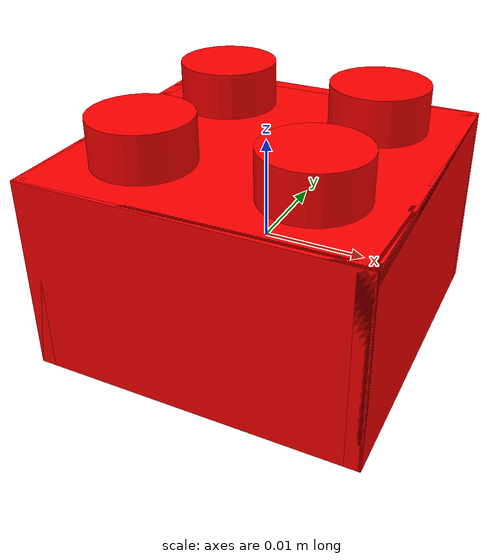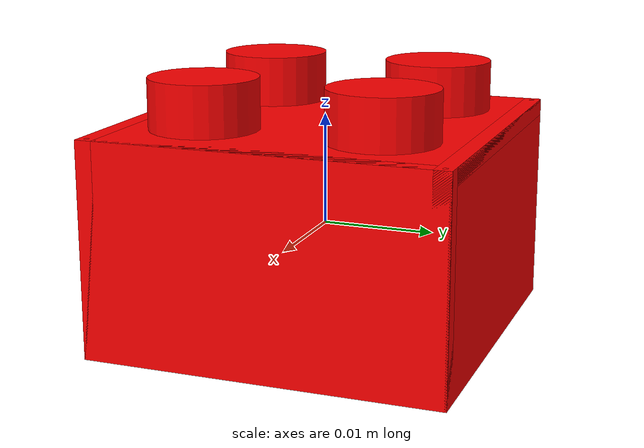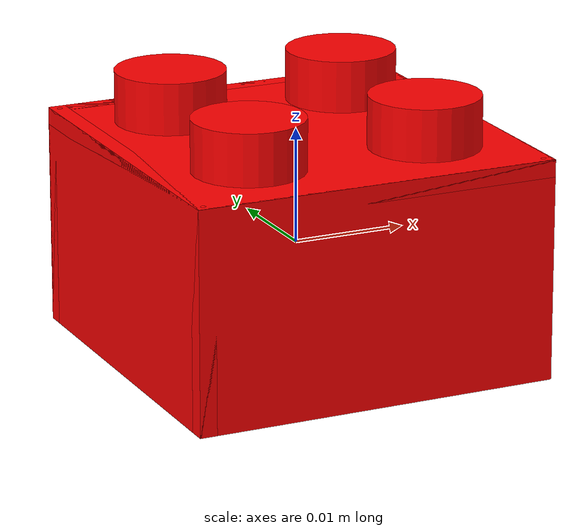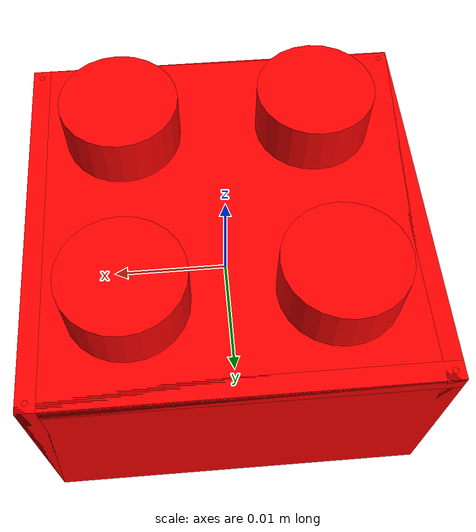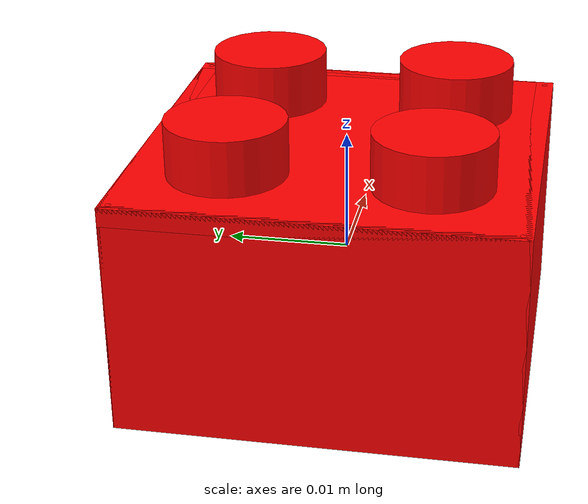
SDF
<?xml version="1.0"?>
<sdf version="1.7">
  <model name="block">
    <link name="block">

      <visual name="left_visual">
        <pose>0.0 0.01525 0.0 0 0 0</pose>
        <geometry>
          <box>
            <size>0.032 0.0015 0.0192</size>
          </box>
        </geometry>
        <material>
          <diffuse>1.0 0.0 0.0 1.0</diffuse>
        </material>
      </visual>
      <collision name="left_collision">
        <pose>0.0 0.01525 0.0 0 0 0</pose>
        <geometry>
          <box>
            <size>0.032 0.0015 0.0192</size>
          </box>
        </geometry>
          <drake:proximity_properties>
              <drake:rigid_hydroelastic/>
              <drake:mesh_resolution_hint>0.5</drake:mesh_resolution_hint>
          </drake:proximity_properties>
      </collision>

      <visual name="right_visual">
        <pose>0.0 -0.01525 0.0 0 0 0</pose>
        <geometry>
          <box>
            <size>0.032 0.0015 0.0192</size>
          </box>
        </geometry>
        <material>
          <diffuse>1.0 0.0 0.0 1.0</diffuse>
        </material>
      </visual>
      <collision name="right_collision">
        <pose>0.0 -0.01525 0.0 0 0 0</pose>
        <geometry>
          <box>
            <size>0.032 0.0015 0.0192</size>
          </box>
        </geometry>
          <drake:proximity_properties>
              <drake:rigid_hydroelastic/>
              <drake:mesh_resolution_hint>0.5</drake:mesh_resolution_hint>
          </drake:proximity_properties>
      </collision>

      <visual name="front_visual">
        <pose>0.01525 0.0 0.0 0 0 0</pose>
        <geometry>
          <box>
            <size>0.0015 0.032 0.0192</size>
          </box>
        </geometry>
        <material>
          <diffuse>1.0 0.0 0.0 1.0</diffuse>
        </material>
      </visual>
      <collision name="front_collision">
        <pose>0.01525 0.0 0.0 0 0 0</pose>
        <geometry>
          <box>
            <size>0.0015 0.032 0.0192</size>
          </box>
        </geometry>
          <drake:proximity_properties>
              <drake:rigid_hydroelastic/>
              <drake:mesh_resolution_hint>0.5</drake:mesh_resolution_hint>
          </drake:proximity_properties>
      </collision>

      <visual name="back_visual">
        <pose>-0.01525 0.0 0.0 0 0 0</pose>
        <geometry>
          <box>
            <size>0.0015 0.032 0.0192</size>
          </box>
        </geometry>
        <material>
          <diffuse>1.0 0.0 0.0 1.0</diffuse>
        </material>
      </visual>
      <collision name="back_collision">
        <pose>-0.01525 0.0 0.0 0 0 0</pose>
        <geometry>
          <box>
            <size>0.0015 0.032 0.0192</size>
          </box>
        </geometry>
          <drake:proximity_properties>
              <drake:rigid_hydroelastic/>
              <drake:mesh_resolution_hint>0.5</drake:mesh_resolution_hint>
          </drake:proximity_properties>
      </collision>

      <visual name="top_visual">
        <pose>0.0 0.0 0.008849999999999998 0 0 0</pose>
        <geometry>
          <box>
            <size>0.032 0.032 0.0015</size>
          </box>
        </geometry>
        <material>
          <diffuse>1.0 0.0 0.0 1.0</diffuse>
        </material>
      </visual>
      <collision name="top_collision">
        <pose>0.0 0.0 0.008849999999999998 0 0 0</pose>
        <geometry>
          <box>
            <size>0.032 0.032 0.0015</size>
          </box>
        </geometry>
          <drake:proximity_properties>
              <drake:rigid_hydroelastic/>
              <drake:mesh_resolution_hint>0.5</drake:mesh_resolution_hint>
          </drake:proximity_properties>
      </collision>

      <visual name="stud_1_1_visual">
        <pose>-0.008 -0.008 0.01185 0 0 0</pose>
        <geometry>
          <cylinder>
            <radius>0.0048</radius>
            <length>0.0045</length>
          </cylinder>
        </geometry>
        <material>
          <diffuse>1.0 0.0 0.0 1.0</diffuse>
        </material>
      </visual>
      <collision name="stud_1_1_collision">
        <pose>-0.008 -0.008 0.01185 0 0 0</pose>
        <geometry>
          <cylinder>
            <radius>0.0048</radius>
            <length>0.0045</length>
          </cylinder>
        </geometry>
          <drake:proximity_properties>
              <drake:rigid_hydroelastic/>
              <drake:mesh_resolution_hint>0.5</drake:mesh_resolution_hint>
          </drake:proximity_properties>
      </collision>

      <visual name="stud_1_2_visual">
        <pose>-0.008 0.008 0.01185 0 0 0</pose>
        <geometry>
          <cylinder>
            <radius>0.0048</radius>
            <length>0.0045</length>
          </cylinder>
        </geometry>
        <material>
          <diffuse>1.0 0.0 0.0 1.0</diffuse>
        </material>
      </visual>
      <collision name="stud_1_2_collision">
        <pose>-0.008 0.008 0.01185 0 0 0</pose>
        <geometry>
          <cylinder>
            <radius>0.0048</radius>
            <length>0.0045</length>
          </cylinder>
        </geometry>
          <drake:proximity_properties>
              <drake:rigid_hydroelastic/>
              <drake:mesh_resolution_hint>0.5</drake:mesh_resolution_hint>
          </drake:proximity_properties>
      </collision>

      <visual name="stud_2_1_visual">
        <pose>0.008 -0.008 0.01185 0 0 0</pose>
        <geometry>
          <cylinder>
            <radius>0.0048</radius>
            <length>0.0045</length>
          </cylinder>
        </geometry>
        <material>
          <diffuse>1.0 0.0 0.0 1.0</diffuse>
        </material>
      </visual>
      <collision name="stud_2_1_collision">
        <pose>0.008 -0.008 0.01185 0 0 0</pose>
        <geometry>
          <cylinder>
            <radius>0.0048</radius>
            <length>0.0045</length>
          </cylinder>
        </geometry>
          <drake:proximity_properties>
              <drake:rigid_hydroelastic/>
              <drake:mesh_resolution_hint>0.5</drake:mesh_resolution_hint>
          </drake:proximity_properties>
      </collision>

      <visual name="stud_2_2_visual">
        <pose>0.008 0.008 0.01185 0 0 0</pose>
        <geometry>
          <cylinder>
            <radius>0.0048</radius>
            <length>0.0045</length>
          </cylinder>
        </geometry>
        <material>
          <diffuse>1.0 0.0 0.0 1.0</diffuse>
        </material>
      </visual>
      <collision name="stud_2_2_collision">
        <pose>0.008 0.008 0.01185 0 0 0</pose>
        <geometry>
          <cylinder>
            <radius>0.0048</radius>
            <length>0.0045</length>
          </cylinder>
        </geometry>
          <drake:proximity_properties>
              <drake:rigid_hydroelastic/>
              <drake:mesh_resolution_hint>0.5</drake:mesh_resolution_hint>
          </drake:proximity_properties>
      </collision>

      <visual name="tube_1_1_visual">
        <pose>0.0 0.0 0.0 0 0 0</pose>
        <geometry>
          <cylinder>
            <radius>0.006625</radius>
            <length>0.0167</length>
          </cylinder>
        </geometry>
        <material>
          <diffuse>1.0 0.0 0.0 1.0</diffuse>
        </material>
      </visual>
      <collision name="tube_1_1_collision">
        <pose>0.0 0.0 0.0 0 0 0</pose>
        <geometry>
          <cylinder>
            <radius>0.006625</radius>
            <length>0.0167</length>
          </cylinder>
        </geometry>
          <drake:proximity_properties>
              <drake:rigid_hydroelastic/>
              <drake:mesh_resolution_hint>0.5</drake:mesh_resolution_hint>
          </drake:proximity_properties>
      </collision>

      <visual name="tube_1_1_sphere_1_visual">
        <pose>0.004578516408182896 0.004578516408182895 -0.00805 0 0 0</pose>
        <geometry>
          <sphere>
            <radius>0.00030000000000000003</radius>
          </sphere>
        </geometry>
        <material>
          <diffuse>1.0 0.0 0.0 1.0</diffuse>
        </material>
      </visual>
      <collision name="tube_1_1_sphere_1_collision">
        <pose>0.004578516408182896 0.004578516408182895 -0.00805 0 0 0</pose>
        <geometry>
          <sphere>
            <radius>0.00030000000000000003</radius>
          </sphere>
        </geometry>
      </collision>

      <visual name="tube_1_1_sphere_2_visual">
        <pose>-0.004578516408182895 0.004578516408182896 -0.00805 0 0 0</pose>
        <geometry>
          <sphere>
            <radius>0.00030000000000000003</radius>
          </sphere>
        </geometry>
        <material>
          <diffuse>1.0 0.0 0.0 1.0</diffuse>
        </material>
      </visual>
      <collision name="tube_1_1_sphere_2_collision">
        <pose>-0.004578516408182895 0.004578516408182896 -0.00805 0 0 0</pose>
        <geometry>
          <sphere>
            <radius>0.00030000000000000003</radius>
          </sphere>
        </geometry>
      </collision>

      <visual name="tube_1_1_sphere_3_visual">
        <pose>-0.004578516408182896 -0.004578516408182895 -0.00805 0 0 0</pose>
        <geometry>
          <sphere>
            <radius>0.00030000000000000003</radius>
          </sphere>
        </geometry>
        <material>
          <diffuse>1.0 0.0 0.0 1.0</diffuse>
        </material>
      </visual>
      <collision name="tube_1_1_sphere_3_collision">
        <pose>-0.004578516408182896 -0.004578516408182895 -0.00805 0 0 0</pose>
        <geometry>
          <sphere>
            <radius>0.00030000000000000003</radius>
          </sphere>
        </geometry>
      </collision>

      <visual name="tube_1_1_sphere_4_visual">
        <pose>0.004578516408182894 -0.004578516408182896 -0.00805 0 0 0</pose>
        <geometry>
          <sphere>
            <radius>0.00030000000000000003</radius>
          </sphere>
        </geometry>
        <material>
          <diffuse>1.0 0.0 0.0 1.0</diffuse>
        </material>
      </visual>
      <collision name="tube_1_1_sphere_4_collision">
        <pose>0.004578516408182894 -0.004578516408182896 -0.00805 0 0 0</pose>
        <geometry>
          <sphere>
            <radius>0.00030000000000000003</radius>
          </sphere>
        </geometry>
      </collision>

      <visual name="front_left_bottom_visual">
        <pose>0.01525 0.01525 -0.008887499999999998 0 0 0</pose>
        <geometry>
          <sphere>
            <radius>0.00075</radius>
          </sphere>
        </geometry>
        <material>
          <diffuse>1.0 0.0 0.0 1.0</diffuse>
        </material>
      </visual>
      <collision name="front_left_bottom_collision">
        <pose>0.01525 0.01525 -0.008887499999999998 0 0 0</pose>
        <geometry>
          <sphere>
            <radius>0.00075</radius>
          </sphere>
        </geometry>
      </collision>

      <visual name="front_right_bottom_visual">
        <pose>0.01525 -0.01525 -0.008887499999999998 0 0 0</pose>
        <geometry>
          <sphere>
            <radius>0.00075</radius>
          </sphere>
        </geometry>
        <material>
          <diffuse>1.0 0.0 0.0 1.0</diffuse>
        </material>
      </visual>
      <collision name="front_right_bottom_collision">
        <pose>0.01525 -0.01525 -0.008887499999999998 0 0 0</pose>
        <geometry>
          <sphere>
            <radius>0.00075</radius>
          </sphere>
        </geometry>
      </collision>

      <visual name="back_left_bottom_visual">
        <pose>-0.01525 0.01525 -0.008887499999999998 0 0 0</pose>
        <geometry>
          <sphere>
            <radius>0.00075</radius>
          </sphere>
        </geometry>
        <material>
          <diffuse>1.0 0.0 0.0 1.0</diffuse>
        </material>
      </visual>
      <collision name="back_left_bottom_collision">
        <pose>-0.01525 0.01525 -0.008887499999999998 0 0 0</pose>
        <geometry>
          <sphere>
            <radius>0.00075</radius>
          </sphere>
        </geometry>
      </collision>

      <visual name="back_right_bottom_visual">
        <pose>-0.01525 -0.01525 -0.008887499999999998 0 0 0</pose>
        <geometry>
          <sphere>
            <radius>0.00075</radius>
          </sphere>
        </geometry>
        <material>
          <diffuse>1.0 0.0 0.0 1.0</diffuse>
        </material>
      </visual>
      <collision name="back_right_bottom_collision">
        <pose>-0.01525 -0.01525 -0.008887499999999998 0 0 0</pose>
        <geometry>
          <sphere>
            <radius>0.00075</radius>
          </sphere>
        </geometry>
      </collision>

      <visual name="front_left_top_visual">
        <pose>0.01525 0.01525 0.008887499999999998 0 0 0</pose>
        <geometry>
          <sphere>
            <radius>0.00075</radius>
          </sphere>
        </geometry>
        <material>
          <diffuse>1.0 0.0 0.0 1.0</diffuse>
        </material>
      </visual>
      <collision name="front_left_top_collision">
        <pose>0.01525 0.01525 0.008887499999999998 0 0 0</pose>
        <geometry>
          <sphere>
            <radius>0.00075</radius>
          </sphere>
        </geometry>
      </collision>

      <visual name="front_right_top_visual">
        <pose>0.01525 -0.01525 0.008887499999999998 0 0 0</pose>
        <geometry>
          <sphere>
            <radius>0.00075</radius>
          </sphere>
        </geometry>
        <material>
          <diffuse>1.0 0.0 0.0 1.0</diffuse>
        </material>
      </visual>
      <collision name="front_right_top_collision">
        <pose>0.01525 -0.01525 0.008887499999999998 0 0 0</pose>
        <geometry>
          <sphere>
            <radius>0.00075</radius>
          </sphere>
        </geometry>
      </collision>

      <visual name="back_left_top_visual">
        <pose>-0.01525 0.01525 0.008887499999999998 0 0 0</pose>
        <geometry>
          <sphere>
            <radius>0.00075</radius>
          </sphere>
        </geometry>
        <material>
          <diffuse>1.0 0.0 0.0 1.0</diffuse>
        </material>
      </visual>
      <collision name="back_left_top_collision">
        <pose>-0.01525 0.01525 0.008887499999999998 0 0 0</pose>
        <geometry>
          <sphere>
            <radius>0.00075</radius>
          </sphere>
        </geometry>
      </collision>

      <visual name="back_right_top_visual">
        <pose>-0.01525 -0.01525 0.008887499999999998 0 0 0</pose>
        <geometry>
          <sphere>
            <radius>0.00075</radius>
          </sphere>
        </geometry>
        <material>
          <diffuse>1.0 0.0 0.0 1.0</diffuse>
        </material>
      </visual>
      <collision name="back_right_top_collision">
        <pose>-0.01525 -0.01525 0.008887499999999998 0 0 0</pose>
        <geometry>
          <sphere>
            <radius>0.00075</radius>
          </sphere>
        </geometry>
      </collision>

      <inertial>
        <pose>0 0 0 0 0 0</pose>
        <mass>0.006</mass>
        <inertia>
          <ixx>6.963199999999999e-07</ixx>
          <ixy>0</ixy>
          <ixz>0</ixz>
          <iyy>6.963199999999999e-07</iyy>
          <iyz>0</iyz>
          <izz>1.024e-06</izz>
        </inertia>
      </inertial>

    </link>
  </model>
</sdf>
